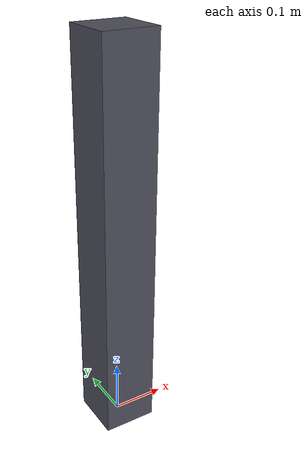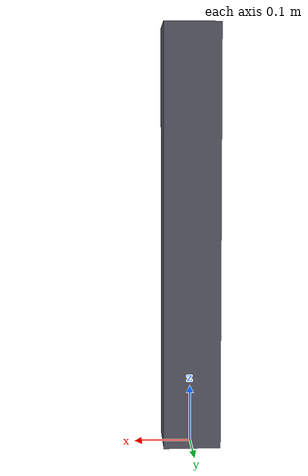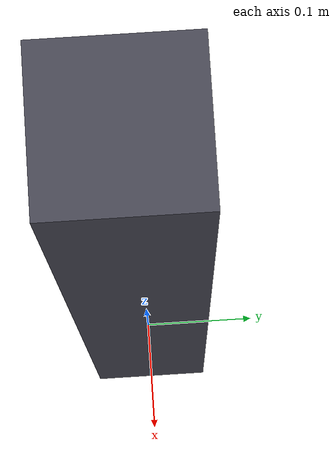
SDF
<?xml version="1.0"?>
<sdf version="1.9">
  <model name="object_pedestal">
    <static>true</static>
    <!-- Top at 0.7415 m like the pedestal of apriltag_target -->
    <link name="pedestal">
      <collision name="collision">
        <pose>0 0 0.37075 0 0 0</pose>
        <geometry><box><size>0.1 0.1 0.7415</size></box></geometry>
      </collision>
      <visual name="visual">
        <pose>0 0 0.37075 0 0 0</pose>
        <geometry><box><size>0.1 0.1 0.7415</size></box></geometry>
        <material>
          <ambient>0.3 0.3 0.35 1</ambient>
          <diffuse>0.3 0.3 0.35 1</diffuse>
        </material>
      </visual>
    </link>
  </model>
</sdf>
